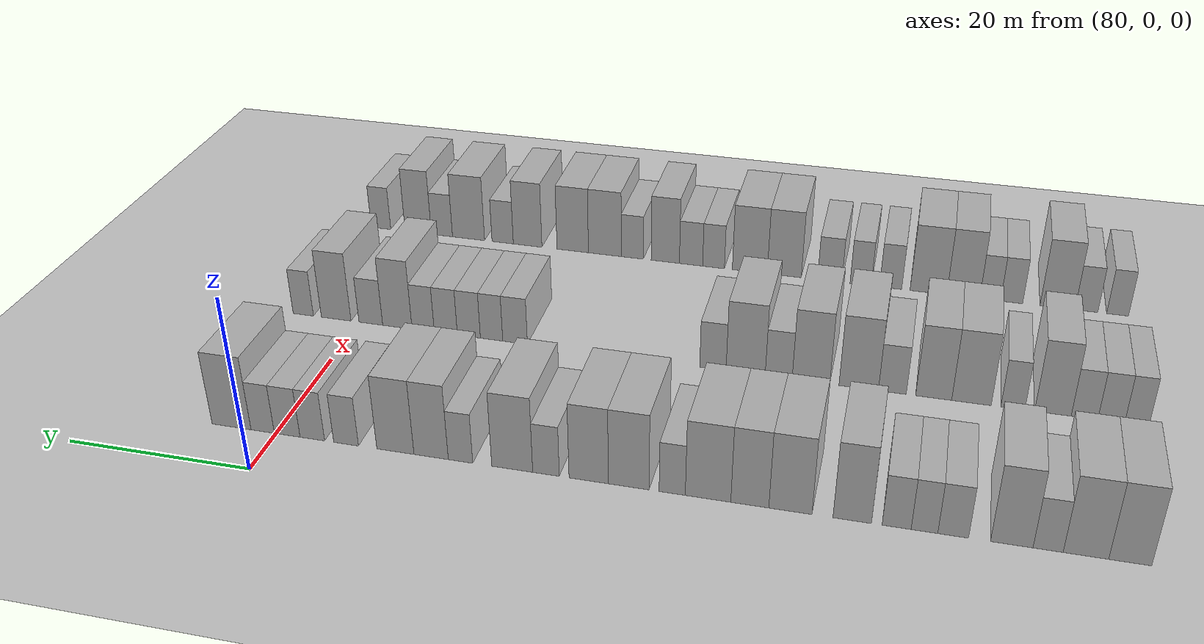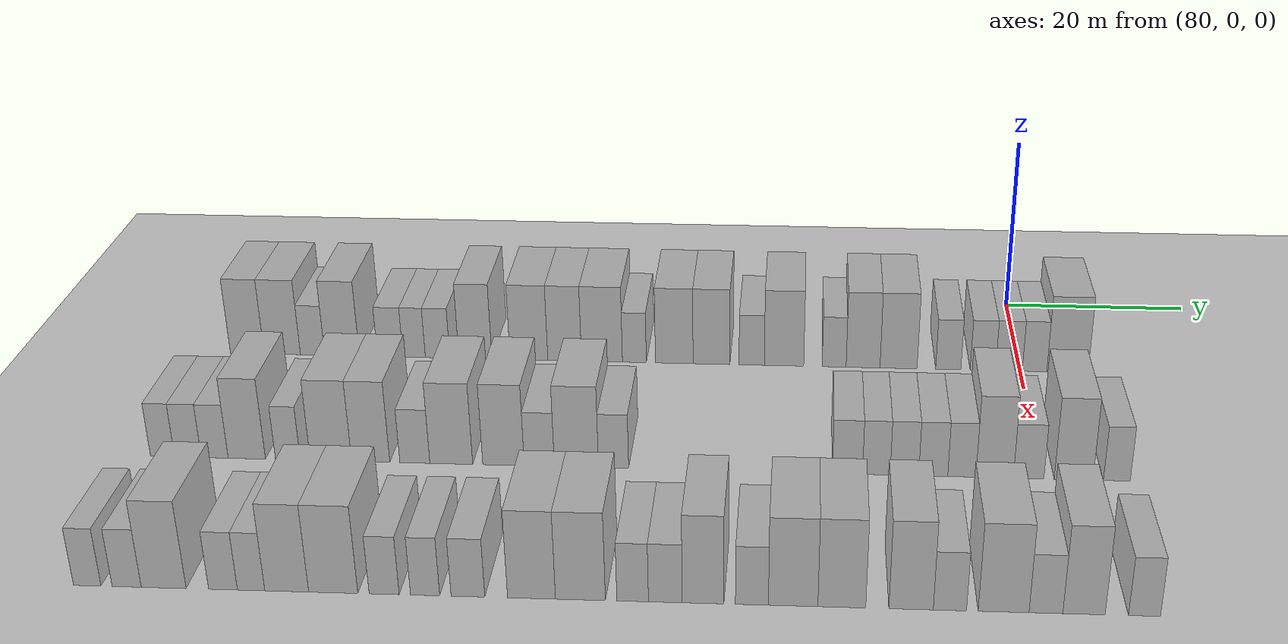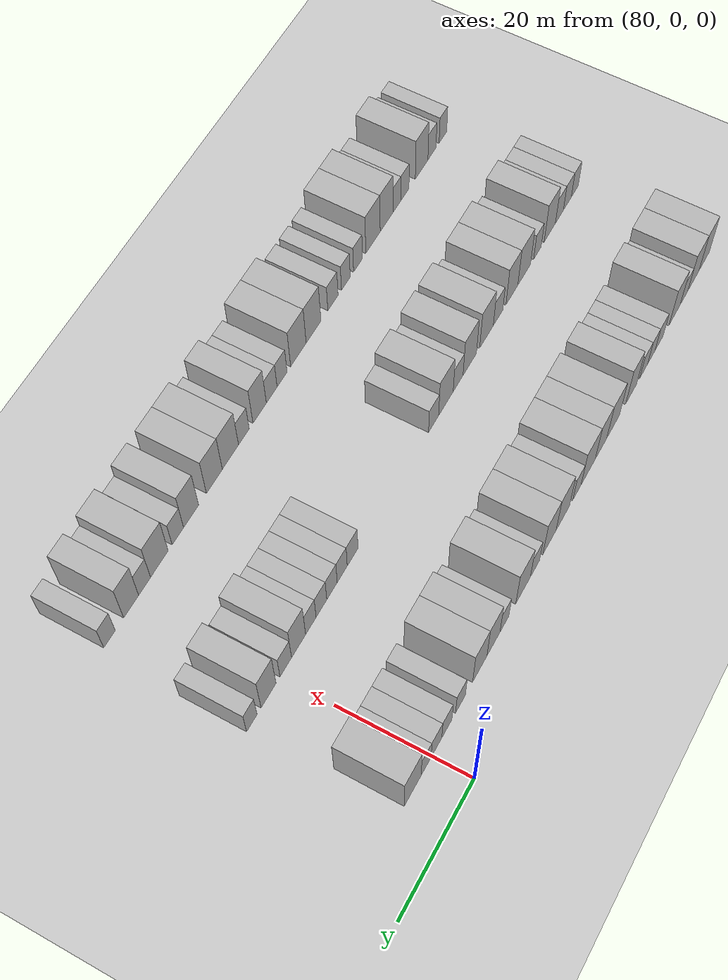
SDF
<sdf version="1.6">
 <world name="default">
  <include>
   <name>ground_plane_2</name>
   <uri>model://HANNAS_ground_plane</uri>
   <pose>100 0 0  0 0 0</pose>
  </include>
  <model name="building_640">
   <static>1</static>
   <pose>91.0000 -84.4906 0 0.000000 0.000000 0.000000</pose>
   <link name="link">
    <pose>0 0 4.50 0 0 0</pose>
    <collision name="collision"><geometry><box><size>10.0000 3.7576 9.0000</size></box></geometry></collision>
    <visual name="visual">
     <cast_shadows>0</cast_shadows>
     <geometry><box><size>10.0000 3.7576 9.0000</size></box></geometry>
     <material>
      <script>
       <uri>model://HANNAS_wall/materials/scripts</uri>
       <uri>model://HANNAS_wall/materials/textures</uri>
       <name>vrc/HANNAS_wall</name>
      </script>
     </material>
    </visual>
   </link>
  </model>
  <model name="building_641">
   <static>1</static>
   <pose>91.0000 -80.5954 0 0.000000 0.000000 0.000000</pose>
   <link name="link">
    <pose>0 0 4.50 0 0 0</pose>
    <collision name="collision"><geometry><box><size>10.0000 4.0330 9.0000</size></box></geometry></collision>
    <visual name="visual">
     <cast_shadows>0</cast_shadows>
     <geometry><box><size>10.0000 4.0330 9.0000</size></box></geometry>
     <material>
      <script>
       <uri>model://HANNAS_wall/materials/scripts</uri>
       <uri>model://HANNAS_wall/materials/textures</uri>
       <name>vrc/HANNAS_wall</name>
      </script>
     </material>
    </visual>
   </link>
  </model>
  <model name="building_642">
   <static>1</static>
   <pose>91.0000 -77.2322 0 0.000000 0.000000 0.000000</pose>
   <link name="link">
    <pose>0 0 3.00 0 0 0</pose>
    <collision name="collision"><geometry><box><size>10.0000 2.6934 6.0000</size></box></geometry></collision>
    <visual name="visual">
     <cast_shadows>0</cast_shadows>
     <geometry><box><size>10.0000 2.6934 6.0000</size></box></geometry>
     <material>
      <script>
       <uri>model://HANNAS_wall/materials/scripts</uri>
       <uri>model://HANNAS_wall/materials/textures</uri>
       <name>vrc/HANNAS_wall</name>
      </script>
     </material>
    </visual>
   </link>
  </model>
  <model name="building_643">
   <static>1</static>
   <pose>91.0000 -73.9660 0 0.000000 0.000000 0.000000</pose>
   <link name="link">
    <pose>0 0 4.50 0 0 0</pose>
    <collision name="collision"><geometry><box><size>10.0000 3.8389 9.0000</size></box></geometry></collision>
    <visual name="visual">
     <cast_shadows>0</cast_shadows>
     <geometry><box><size>10.0000 3.8389 9.0000</size></box></geometry>
     <material>
      <script>
       <uri>model://HANNAS_wall/materials/scripts</uri>
       <uri>model://HANNAS_wall/materials/textures</uri>
       <name>vrc/HANNAS_wall</name>
      </script>
     </material>
    </visual>
   </link>
  </model>
  <model name="building_644">
   <static>1</static>
   <pose>91.0000 -68.6338 0 0.000000 0.000000 0.000000</pose>
   <link name="link">
    <pose>0 0 3.00 0 0 0</pose>
    <collision name="collision"><geometry><box><size>10.0000 2.8254 6.0000</size></box></geometry></collision>
    <visual name="visual">
     <cast_shadows>0</cast_shadows>
     <geometry><box><size>10.0000 2.8254 6.0000</size></box></geometry>
     <material>
      <script>
       <uri>model://HANNAS_wall/materials/scripts</uri>
       <uri>model://HANNAS_wall/materials/textures</uri>
       <name>vrc/HANNAS_wall</name>
      </script>
     </material>
    </visual>
   </link>
  </model>
  <model name="building_645">
   <static>1</static>
   <pose>91.0000 -65.9870 0 0.000000 0.000000 0.000000</pose>
   <link name="link">
    <pose>0 0 3.00 0 0 0</pose>
    <collision name="collision"><geometry><box><size>10.0000 2.4682 6.0000</size></box></geometry></collision>
    <visual name="visual">
     <cast_shadows>0</cast_shadows>
     <geometry><box><size>10.0000 2.4682 6.0000</size></box></geometry>
     <material>
      <script>
       <uri>model://HANNAS_wall/materials/scripts</uri>
       <uri>model://HANNAS_wall/materials/textures</uri>
       <name>vrc/HANNAS_wall</name>
      </script>
     </material>
    </visual>
   </link>
  </model>
  <model name="building_646">
   <static>1</static>
   <pose>91.0000 -63.4015 0 0.000000 0.000000 0.000000</pose>
   <link name="link">
    <pose>0 0 3.00 0 0 0</pose>
    <collision name="collision"><geometry><box><size>10.0000 2.7029 6.0000</size></box></geometry></collision>
    <visual name="visual">
     <cast_shadows>0</cast_shadows>
     <geometry><box><size>10.0000 2.7029 6.0000</size></box></geometry>
     <material>
      <script>
       <uri>model://HANNAS_wall/materials/scripts</uri>
       <uri>model://HANNAS_wall/materials/textures</uri>
       <name>vrc/HANNAS_wall</name>
      </script>
     </material>
    </visual>
   </link>
  </model>
  <model name="building_647">
   <static>1</static>
   <pose>91.0000 -59.2321 0 0.000000 0.000000 0.000000</pose>
   <link name="link">
    <pose>0 0 4.50 0 0 0</pose>
    <collision name="collision"><geometry><box><size>10.0000 3.6359 9.0000</size></box></geometry></collision>
    <visual name="visual">
     <cast_shadows>0</cast_shadows>
     <geometry><box><size>10.0000 3.6359 9.0000</size></box></geometry>
     <material>
      <script>
       <uri>model://HANNAS_wall/materials/scripts</uri>
       <uri>model://HANNAS_wall/materials/textures</uri>
       <name>vrc/HANNAS_wall</name>
      </script>
     </material>
    </visual>
   </link>
  </model>
  <model name="building_648">
   <static>1</static>
   <pose>91.0000 -53.3398 0 0.000000 0.000000 0.000000</pose>
   <link name="link">
    <pose>0 0 4.50 0 0 0</pose>
    <collision name="collision"><geometry><box><size>10.0000 4.1485 9.0000</size></box></geometry></collision>
    <visual name="visual">
     <cast_shadows>0</cast_shadows>
     <geometry><box><size>10.0000 4.1485 9.0000</size></box></geometry>
     <material>
      <script>
       <uri>model://HANNAS_wall/materials/scripts</uri>
       <uri>model://HANNAS_wall/materials/textures</uri>
       <name>vrc/HANNAS_wall</name>
      </script>
     </material>
    </visual>
   </link>
  </model>
  <model name="building_649">
   <static>1</static>
   <pose>91.0000 -49.4177 0 0.000000 0.000000 0.000000</pose>
   <link name="link">
    <pose>0 0 4.50 0 0 0</pose>
    <collision name="collision"><geometry><box><size>10.0000 3.6957 9.0000</size></box></geometry></collision>
    <visual name="visual">
     <cast_shadows>0</cast_shadows>
     <geometry><box><size>10.0000 3.6957 9.0000</size></box></geometry>
     <material>
      <script>
       <uri>model://HANNAS_wall/materials/scripts</uri>
       <uri>model://HANNAS_wall/materials/textures</uri>
       <name>vrc/HANNAS_wall</name>
      </script>
     </material>
    </visual>
   </link>
  </model>
  <model name="building_650">
   <static>1</static>
   <pose>91.0000 -45.3319 0 0.000000 0.000000 0.000000</pose>
   <link name="link">
    <pose>0 0 4.50 0 0 0</pose>
    <collision name="collision"><geometry><box><size>10.0000 4.4759 9.0000</size></box></geometry></collision>
    <visual name="visual">
     <cast_shadows>0</cast_shadows>
     <geometry><box><size>10.0000 4.4759 9.0000</size></box></geometry>
     <material>
      <script>
       <uri>model://HANNAS_wall/materials/scripts</uri>
       <uri>model://HANNAS_wall/materials/textures</uri>
       <name>vrc/HANNAS_wall</name>
      </script>
     </material>
    </visual>
   </link>
  </model>
  <model name="building_651">
   <static>1</static>
   <pose>91.0000 -41.7918 0 0.000000 0.000000 0.000000</pose>
   <link name="link">
    <pose>0 0 3.00 0 0 0</pose>
    <collision name="collision"><geometry><box><size>10.0000 2.6044 6.0000</size></box></geometry></collision>
    <visual name="visual">
     <cast_shadows>0</cast_shadows>
     <geometry><box><size>10.0000 2.6044 6.0000</size></box></geometry>
     <material>
      <script>
       <uri>model://HANNAS_wall/materials/scripts</uri>
       <uri>model://HANNAS_wall/materials/textures</uri>
       <name>vrc/HANNAS_wall</name>
      </script>
     </material>
    </visual>
   </link>
  </model>
  <model name="building_652">
   <static>1</static>
   <pose>91.0000 -37.4369 0 0.000000 0.000000 0.000000</pose>
   <link name="link">
    <pose>0 0 4.50 0 0 0</pose>
    <collision name="collision"><geometry><box><size>10.0000 4.1052 9.0000</size></box></geometry></collision>
    <visual name="visual">
     <cast_shadows>0</cast_shadows>
     <geometry><box><size>10.0000 4.1052 9.0000</size></box></geometry>
     <material>
      <script>
       <uri>model://HANNAS_wall/materials/scripts</uri>
       <uri>model://HANNAS_wall/materials/textures</uri>
       <name>vrc/HANNAS_wall</name>
      </script>
     </material>
    </visual>
   </link>
  </model>
  <model name="building_653">
   <static>1</static>
   <pose>91.0000 -33.3820 0 0.000000 0.000000 0.000000</pose>
   <link name="link">
    <pose>0 0 4.50 0 0 0</pose>
    <collision name="collision"><geometry><box><size>10.0000 4.0046 9.0000</size></box></geometry></collision>
    <visual name="visual">
     <cast_shadows>0</cast_shadows>
     <geometry><box><size>10.0000 4.0046 9.0000</size></box></geometry>
     <material>
      <script>
       <uri>model://HANNAS_wall/materials/scripts</uri>
       <uri>model://HANNAS_wall/materials/textures</uri>
       <name>vrc/HANNAS_wall</name>
      </script>
     </material>
    </visual>
   </link>
  </model>
  <model name="building_654">
   <static>1</static>
   <pose>91.0000 -29.0054 0 0.000000 0.000000 0.000000</pose>
   <link name="link">
    <pose>0 0 3.00 0 0 0</pose>
    <collision name="collision"><geometry><box><size>10.0000 2.7486 6.0000</size></box></geometry></collision>
    <visual name="visual">
     <cast_shadows>0</cast_shadows>
     <geometry><box><size>10.0000 2.7486 6.0000</size></box></geometry>
     <material>
      <script>
       <uri>model://HANNAS_wall/materials/scripts</uri>
       <uri>model://HANNAS_wall/materials/textures</uri>
       <name>vrc/HANNAS_wall</name>
      </script>
     </material>
    </visual>
   </link>
  </model>
  <model name="building_655">
   <static>1</static>
   <pose>91.0000 -25.4975 0 0.000000 0.000000 0.000000</pose>
   <link name="link">
    <pose>0 0 4.50 0 0 0</pose>
    <collision name="collision"><geometry><box><size>10.0000 4.2670 9.0000</size></box></geometry></collision>
    <visual name="visual">
     <cast_shadows>0</cast_shadows>
     <geometry><box><size>10.0000 4.2670 9.0000</size></box></geometry>
     <material>
      <script>
       <uri>model://HANNAS_wall/materials/scripts</uri>
       <uri>model://HANNAS_wall/materials/textures</uri>
       <name>vrc/HANNAS_wall</name>
      </script>
     </material>
    </visual>
   </link>
  </model>
  <model name="building_656">
   <static>1</static>
   <pose>91.0000 -20.0700 0 0.000000 0.000000 0.000000</pose>
   <link name="link">
    <pose>0 0 3.00 0 0 0</pose>
    <collision name="collision"><geometry><box><size>10.0000 2.5881 6.0000</size></box></geometry></collision>
    <visual name="visual">
     <cast_shadows>0</cast_shadows>
     <geometry><box><size>10.0000 2.5881 6.0000</size></box></geometry>
     <material>
      <script>
       <uri>model://HANNAS_wall/materials/scripts</uri>
       <uri>model://HANNAS_wall/materials/textures</uri>
       <name>vrc/HANNAS_wall</name>
      </script>
     </material>
    </visual>
   </link>
  </model>
  <model name="building_657">
   <static>1</static>
   <pose>91.0000 -16.9427 0 0.000000 0.000000 0.000000</pose>
   <link name="link">
    <pose>0 0 4.50 0 0 0</pose>
    <collision name="collision"><geometry><box><size>10.0000 3.6664 9.0000</size></box></geometry></collision>
    <visual name="visual">
     <cast_shadows>0</cast_shadows>
     <geometry><box><size>10.0000 3.6664 9.0000</size></box></geometry>
     <material>
      <script>
       <uri>model://HANNAS_wall/materials/scripts</uri>
       <uri>model://HANNAS_wall/materials/textures</uri>
       <name>vrc/HANNAS_wall</name>
      </script>
     </material>
    </visual>
   </link>
  </model>
  <model name="building_658">
   <static>1</static>
   <pose>91.0000 -13.1056 0 0.000000 0.000000 0.000000</pose>
   <link name="link">
    <pose>0 0 4.50 0 0 0</pose>
    <collision name="collision"><geometry><box><size>10.0000 4.0078 9.0000</size></box></geometry></collision>
    <visual name="visual">
     <cast_shadows>0</cast_shadows>
     <geometry><box><size>10.0000 4.0078 9.0000</size></box></geometry>
     <material>
      <script>
       <uri>model://HANNAS_wall/materials/scripts</uri>
       <uri>model://HANNAS_wall/materials/textures</uri>
       <name>vrc/HANNAS_wall</name>
      </script>
     </material>
    </visual>
   </link>
  </model>
  <model name="building_659">
   <static>1</static>
   <pose>91.0000 -7.7446 0 0.000000 0.000000 0.000000</pose>
   <link name="link">
    <pose>0 0 3.00 0 0 0</pose>
    <collision name="collision"><geometry><box><size>10.0000 2.7142 6.0000</size></box></geometry></collision>
    <visual name="visual">
     <cast_shadows>0</cast_shadows>
     <geometry><box><size>10.0000 2.7142 6.0000</size></box></geometry>
     <material>
      <script>
       <uri>model://HANNAS_wall/materials/scripts</uri>
       <uri>model://HANNAS_wall/materials/textures</uri>
       <name>vrc/HANNAS_wall</name>
      </script>
     </material>
    </visual>
   </link>
  </model>
  <model name="building_660">
   <static>1</static>
   <pose>91.0000 -4.0229 0 0.000000 0.000000 0.000000</pose>
   <link name="link">
    <pose>0 0 3.00 0 0 0</pose>
    <collision name="collision"><geometry><box><size>10.0000 2.7292 6.0000</size></box></geometry></collision>
    <visual name="visual">
     <cast_shadows>0</cast_shadows>
     <geometry><box><size>10.0000 2.7292 6.0000</size></box></geometry>
     <material>
      <script>
       <uri>model://HANNAS_wall/materials/scripts</uri>
       <uri>model://HANNAS_wall/materials/textures</uri>
       <name>vrc/HANNAS_wall</name>
      </script>
     </material>
    </visual>
   </link>
  </model>
  <model name="building_661">
   <static>1</static>
   <pose>91.0000 -1.2262 0 0.000000 0.000000 0.000000</pose>
   <link name="link">
    <pose>0 0 3.00 0 0 0</pose>
    <collision name="collision"><geometry><box><size>10.0000 2.8642 6.0000</size></box></geometry></collision>
    <visual name="visual">
     <cast_shadows>0</cast_shadows>
     <geometry><box><size>10.0000 2.8642 6.0000</size></box></geometry>
     <material>
      <script>
       <uri>model://HANNAS_wall/materials/scripts</uri>
       <uri>model://HANNAS_wall/materials/textures</uri>
       <name>vrc/HANNAS_wall</name>
      </script>
     </material>
    </visual>
   </link>
  </model>
  <model name="building_662">
   <static>1</static>
   <pose>91.0000 1.5176 0 0.000000 0.000000 0.000000</pose>
   <link name="link">
    <pose>0 0 3.00 0 0 0</pose>
    <collision name="collision"><geometry><box><size>10.0000 2.6234 6.0000</size></box></geometry></collision>
    <visual name="visual">
     <cast_shadows>0</cast_shadows>
     <geometry><box><size>10.0000 2.6234 6.0000</size></box></geometry>
     <material>
      <script>
       <uri>model://HANNAS_wall/materials/scripts</uri>
       <uri>model://HANNAS_wall/materials/textures</uri>
       <name>vrc/HANNAS_wall</name>
      </script>
     </material>
    </visual>
   </link>
  </model>
  <model name="building_663">
   <static>1</static>
   <pose>91.0000 5.0386 0 0.000000 0.000000 0.000000</pose>
   <link name="link">
    <pose>0 0 4.50 0 0 0</pose>
    <collision name="collision"><geometry><box><size>10.0000 4.4187 9.0000</size></box></geometry></collision>
    <visual name="visual">
     <cast_shadows>0</cast_shadows>
     <geometry><box><size>10.0000 4.4187 9.0000</size></box></geometry>
     <material>
      <script>
       <uri>model://HANNAS_wall/materials/scripts</uri>
       <uri>model://HANNAS_wall/materials/textures</uri>
       <name>vrc/HANNAS_wall</name>
      </script>
     </material>
    </visual>
   </link>
  </model>
  <model name="building_824">
   <static>1</static>
   <pose>113.0000 -86.7164 0 0.000000 0.000000 0.000000</pose>
   <link name="link">
    <pose>0 0 3.00 0 0 0</pose>
    <collision name="collision"><geometry><box><size>10.0000 2.4150 6.0000</size></box></geometry></collision>
    <visual name="visual">
     <cast_shadows>0</cast_shadows>
     <geometry><box><size>10.0000 2.4150 6.0000</size></box></geometry>
     <material>
      <script>
       <uri>model://HANNAS_wall/materials/scripts</uri>
       <uri>model://HANNAS_wall/materials/textures</uri>
       <name>vrc/HANNAS_wall</name>
      </script>
     </material>
    </visual>
   </link>
  </model>
  <model name="building_825">
   <static>1</static>
   <pose>113.0000 -84.1625 0 0.000000 0.000000 0.000000</pose>
   <link name="link">
    <pose>0 0 3.00 0 0 0</pose>
    <collision name="collision"><geometry><box><size>10.0000 2.6926 6.0000</size></box></geometry></collision>
    <visual name="visual">
     <cast_shadows>0</cast_shadows>
     <geometry><box><size>10.0000 2.6926 6.0000</size></box></geometry>
     <material>
      <script>
       <uri>model://HANNAS_wall/materials/scripts</uri>
       <uri>model://HANNAS_wall/materials/textures</uri>
       <name>vrc/HANNAS_wall</name>
      </script>
     </material>
    </visual>
   </link>
  </model>
  <model name="building_826">
   <static>1</static>
   <pose>113.0000 -81.4694 0 0.000000 0.000000 0.000000</pose>
   <link name="link">
    <pose>0 0 3.00 0 0 0</pose>
    <collision name="collision"><geometry><box><size>10.0000 2.6936 6.0000</size></box></geometry></collision>
    <visual name="visual">
     <cast_shadows>0</cast_shadows>
     <geometry><box><size>10.0000 2.6936 6.0000</size></box></geometry>
     <material>
      <script>
       <uri>model://HANNAS_wall/materials/scripts</uri>
       <uri>model://HANNAS_wall/materials/textures</uri>
       <name>vrc/HANNAS_wall</name>
      </script>
     </material>
    </visual>
   </link>
  </model>
  <model name="building_827">
   <static>1</static>
   <pose>113.0000 -78.2540 0 0.000000 0.000000 0.000000</pose>
   <link name="link">
    <pose>0 0 4.50 0 0 0</pose>
    <collision name="collision"><geometry><box><size>10.0000 3.7372 9.0000</size></box></geometry></collision>
    <visual name="visual">
     <cast_shadows>0</cast_shadows>
     <geometry><box><size>10.0000 3.7372 9.0000</size></box></geometry>
     <material>
      <script>
       <uri>model://HANNAS_wall/materials/scripts</uri>
       <uri>model://HANNAS_wall/materials/textures</uri>
       <name>vrc/HANNAS_wall</name>
      </script>
     </material>
    </visual>
   </link>
  </model>
  <model name="building_828">
   <static>1</static>
   <pose>113.0000 -74.1465 0 0.000000 0.000000 0.000000</pose>
   <link name="link">
    <pose>0 0 3.00 0 0 0</pose>
    <collision name="collision"><geometry><box><size>10.0000 2.4777 6.0000</size></box></geometry></collision>
    <visual name="visual">
     <cast_shadows>0</cast_shadows>
     <geometry><box><size>10.0000 2.4777 6.0000</size></box></geometry>
     <material>
      <script>
       <uri>model://HANNAS_wall/materials/scripts</uri>
       <uri>model://HANNAS_wall/materials/textures</uri>
       <name>vrc/HANNAS_wall</name>
      </script>
     </material>
    </visual>
   </link>
  </model>
  <model name="building_829">
   <static>1</static>
   <pose>113.0000 -69.8435 0 0.000000 0.000000 0.000000</pose>
   <link name="link">
    <pose>0 0 4.50 0 0 0</pose>
    <collision name="collision"><geometry><box><size>10.0000 4.1282 9.0000</size></box></geometry></collision>
    <visual name="visual">
     <cast_shadows>0</cast_shadows>
     <geometry><box><size>10.0000 4.1282 9.0000</size></box></geometry>
     <material>
      <script>
       <uri>model://HANNAS_wall/materials/scripts</uri>
       <uri>model://HANNAS_wall/materials/textures</uri>
       <name>vrc/HANNAS_wall</name>
      </script>
     </material>
    </visual>
   </link>
  </model>
  <model name="building_830">
   <static>1</static>
   <pose>113.0000 -65.8798 0 0.000000 0.000000 0.000000</pose>
   <link name="link">
    <pose>0 0 4.50 0 0 0</pose>
    <collision name="collision"><geometry><box><size>10.0000 3.7993 9.0000</size></box></geometry></collision>
    <visual name="visual">
     <cast_shadows>0</cast_shadows>
     <geometry><box><size>10.0000 3.7993 9.0000</size></box></geometry>
     <material>
      <script>
       <uri>model://HANNAS_wall/materials/scripts</uri>
       <uri>model://HANNAS_wall/materials/textures</uri>
       <name>vrc/HANNAS_wall</name>
      </script>
     </material>
    </visual>
   </link>
  </model>
  <model name="building_831">
   <static>1</static>
   <pose>113.0000 -61.4907 0 0.000000 0.000000 0.000000</pose>
   <link name="link">
    <pose>0 0 3.00 0 0 0</pose>
    <collision name="collision"><geometry><box><size>10.0000 2.9790 6.0000</size></box></geometry></collision>
    <visual name="visual">
     <cast_shadows>0</cast_shadows>
     <geometry><box><size>10.0000 2.9790 6.0000</size></box></geometry>
     <material>
      <script>
       <uri>model://HANNAS_wall/materials/scripts</uri>
       <uri>model://HANNAS_wall/materials/textures</uri>
       <name>vrc/HANNAS_wall</name>
      </script>
     </material>
    </visual>
   </link>
  </model>
  <model name="building_832">
   <static>1</static>
   <pose>113.0000 -57.8759 0 0.000000 0.000000 0.000000</pose>
   <link name="link">
    <pose>0 0 4.50 0 0 0</pose>
    <collision name="collision"><geometry><box><size>10.0000 4.2506 9.0000</size></box></geometry></collision>
    <visual name="visual">
     <cast_shadows>0</cast_shadows>
     <geometry><box><size>10.0000 4.2506 9.0000</size></box></geometry>
     <material>
      <script>
       <uri>model://HANNAS_wall/materials/scripts</uri>
       <uri>model://HANNAS_wall/materials/textures</uri>
       <name>vrc/HANNAS_wall</name>
      </script>
     </material>
    </visual>
   </link>
  </model>
  <model name="building_833">
   <static>1</static>
   <pose>113.0000 -52.6978 0 0.000000 0.000000 0.000000</pose>
   <link name="link">
    <pose>0 0 4.50 0 0 0</pose>
    <collision name="collision"><geometry><box><size>10.0000 4.1057 9.0000</size></box></geometry></collision>
    <visual name="visual">
     <cast_shadows>0</cast_shadows>
     <geometry><box><size>10.0000 4.1057 9.0000</size></box></geometry>
     <material>
      <script>
       <uri>model://HANNAS_wall/materials/scripts</uri>
       <uri>model://HANNAS_wall/materials/textures</uri>
       <name>vrc/HANNAS_wall</name>
      </script>
     </material>
    </visual>
   </link>
  </model>
  <model name="building_834">
   <static>1</static>
   <pose>113.0000 -49.1568 0 0.000000 0.000000 0.000000</pose>
   <link name="link">
    <pose>0 0 3.00 0 0 0</pose>
    <collision name="collision"><geometry><box><size>10.0000 2.9762 6.0000</size></box></geometry></collision>
    <visual name="visual">
     <cast_shadows>0</cast_shadows>
     <geometry><box><size>10.0000 2.9762 6.0000</size></box></geometry>
     <material>
      <script>
       <uri>model://HANNAS_wall/materials/scripts</uri>
       <uri>model://HANNAS_wall/materials/textures</uri>
       <name>vrc/HANNAS_wall</name>
      </script>
     </material>
    </visual>
   </link>
  </model>
  <model name="building_835">
   <static>1</static>
   <pose>113.0000 -45.4919 0 0.000000 0.000000 0.000000</pose>
   <link name="link">
    <pose>0 0 4.50 0 0 0</pose>
    <collision name="collision"><geometry><box><size>10.0000 4.3537 9.0000</size></box></geometry></collision>
    <visual name="visual">
     <cast_shadows>0</cast_shadows>
     <geometry><box><size>10.0000 4.3537 9.0000</size></box></geometry>
     <material>
      <script>
       <uri>model://HANNAS_wall/materials/scripts</uri>
       <uri>model://HANNAS_wall/materials/textures</uri>
       <name>vrc/HANNAS_wall</name>
      </script>
     </material>
    </visual>
   </link>
  </model>
  <model name="building_836">
   <static>1</static>
   <pose>113.0000 -41.8344 0 0.000000 0.000000 0.000000</pose>
   <link name="link">
    <pose>0 0 3.00 0 0 0</pose>
    <collision name="collision"><geometry><box><size>10.0000 2.9611 6.0000</size></box></geometry></collision>
    <visual name="visual">
     <cast_shadows>0</cast_shadows>
     <geometry><box><size>10.0000 2.9611 6.0000</size></box></geometry>
     <material>
      <script>
       <uri>model://HANNAS_wall/materials/scripts</uri>
       <uri>model://HANNAS_wall/materials/textures</uri>
       <name>vrc/HANNAS_wall</name>
      </script>
     </material>
    </visual>
   </link>
  </model>
  <model name="building_837">
   <static>1</static>
   <pose>113.0000 -18.9463 0 0.000000 0.000000 0.000000</pose>
   <link name="link">
    <pose>0 0 3.00 0 0 0</pose>
    <collision name="collision"><geometry><box><size>10.0000 2.9384 6.0000</size></box></geometry></collision>
    <visual name="visual">
     <cast_shadows>0</cast_shadows>
     <geometry><box><size>10.0000 2.9384 6.0000</size></box></geometry>
     <material>
      <script>
       <uri>model://HANNAS_wall/materials/scripts</uri>
       <uri>model://HANNAS_wall/materials/textures</uri>
       <name>vrc/HANNAS_wall</name>
      </script>
     </material>
    </visual>
   </link>
  </model>
  <model name="building_838">
   <static>1</static>
   <pose>113.0000 -16.1351 0 0.000000 0.000000 0.000000</pose>
   <link name="link">
    <pose>0 0 3.00 0 0 0</pose>
    <collision name="collision"><geometry><box><size>10.0000 2.6839 6.0000</size></box></geometry></collision>
    <visual name="visual">
     <cast_shadows>0</cast_shadows>
     <geometry><box><size>10.0000 2.6839 6.0000</size></box></geometry>
     <material>
      <script>
       <uri>model://HANNAS_wall/materials/scripts</uri>
       <uri>model://HANNAS_wall/materials/textures</uri>
       <name>vrc/HANNAS_wall</name>
      </script>
     </material>
    </visual>
   </link>
  </model>
  <model name="building_839">
   <static>1</static>
   <pose>113.0000 -13.4050 0 0.000000 0.000000 0.000000</pose>
   <link name="link">
    <pose>0 0 3.00 0 0 0</pose>
    <collision name="collision"><geometry><box><size>10.0000 2.7763 6.0000</size></box></geometry></collision>
    <visual name="visual">
     <cast_shadows>0</cast_shadows>
     <geometry><box><size>10.0000 2.7763 6.0000</size></box></geometry>
     <material>
      <script>
       <uri>model://HANNAS_wall/materials/scripts</uri>
       <uri>model://HANNAS_wall/materials/textures</uri>
       <name>vrc/HANNAS_wall</name>
      </script>
     </material>
    </visual>
   </link>
  </model>
  <model name="building_840">
   <static>1</static>
   <pose>113.0000 -10.6125 0 0.000000 0.000000 0.000000</pose>
   <link name="link">
    <pose>0 0 3.00 0 0 0</pose>
    <collision name="collision"><geometry><box><size>10.0000 2.8088 6.0000</size></box></geometry></collision>
    <visual name="visual">
     <cast_shadows>0</cast_shadows>
     <geometry><box><size>10.0000 2.8088 6.0000</size></box></geometry>
     <material>
      <script>
       <uri>model://HANNAS_wall/materials/scripts</uri>
       <uri>model://HANNAS_wall/materials/textures</uri>
       <name>vrc/HANNAS_wall</name>
      </script>
     </material>
    </visual>
   </link>
  </model>
  <model name="building_841">
   <static>1</static>
   <pose>113.0000 -7.8457 0 0.000000 0.000000 0.000000</pose>
   <link name="link">
    <pose>0 0 3.00 0 0 0</pose>
    <collision name="collision"><geometry><box><size>10.0000 2.7247 6.0000</size></box></geometry></collision>
    <visual name="visual">
     <cast_shadows>0</cast_shadows>
     <geometry><box><size>10.0000 2.7247 6.0000</size></box></geometry>
     <material>
      <script>
       <uri>model://HANNAS_wall/materials/scripts</uri>
       <uri>model://HANNAS_wall/materials/textures</uri>
       <name>vrc/HANNAS_wall</name>
      </script>
     </material>
    </visual>
   </link>
  </model>
  <model name="building_842">
   <static>1</static>
   <pose>113.0000 -4.6710 0 0.000000 0.000000 0.000000</pose>
   <link name="link">
    <pose>0 0 4.50 0 0 0</pose>
    <collision name="collision"><geometry><box><size>10.0000 3.6247 9.0000</size></box></geometry></collision>
    <visual name="visual">
     <cast_shadows>0</cast_shadows>
     <geometry><box><size>10.0000 3.6247 9.0000</size></box></geometry>
     <material>
      <script>
       <uri>model://HANNAS_wall/materials/scripts</uri>
       <uri>model://HANNAS_wall/materials/textures</uri>
       <name>vrc/HANNAS_wall</name>
      </script>
     </material>
    </visual>
   </link>
  </model>
  <model name="building_843">
   <static>1</static>
   <pose>113.0000 -1.3863 0 0.000000 0.000000 0.000000</pose>
   <link name="link">
    <pose>0 0 3.00 0 0 0</pose>
    <collision name="collision"><geometry><box><size>10.0000 2.9448 6.0000</size></box></geometry></collision>
    <visual name="visual">
     <cast_shadows>0</cast_shadows>
     <geometry><box><size>10.0000 2.9448 6.0000</size></box></geometry>
     <material>
      <script>
       <uri>model://HANNAS_wall/materials/scripts</uri>
       <uri>model://HANNAS_wall/materials/textures</uri>
       <name>vrc/HANNAS_wall</name>
      </script>
     </material>
    </visual>
   </link>
  </model>
  <model name="building_844">
   <static>1</static>
   <pose>113.0000 2.9527 0 0.000000 0.000000 0.000000</pose>
   <link name="link">
    <pose>0 0 4.50 0 0 0</pose>
    <collision name="collision"><geometry><box><size>10.0000 3.7331 9.0000</size></box></geometry></collision>
    <visual name="visual">
     <cast_shadows>0</cast_shadows>
     <geometry><box><size>10.0000 3.7331 9.0000</size></box></geometry>
     <material>
      <script>
       <uri>model://HANNAS_wall/materials/scripts</uri>
       <uri>model://HANNAS_wall/materials/textures</uri>
       <name>vrc/HANNAS_wall</name>
      </script>
     </material>
    </visual>
   </link>
  </model>
  <model name="building_845">
   <static>1</static>
   <pose>113.0000 7.1077 0 0.000000 0.000000 0.000000</pose>
   <link name="link">
    <pose>0 0 3.00 0 0 0</pose>
    <collision name="collision"><geometry><box><size>10.0000 2.5768 6.0000</size></box></geometry></collision>
    <visual name="visual">
     <cast_shadows>0</cast_shadows>
     <geometry><box><size>10.0000 2.5768 6.0000</size></box></geometry>
     <material>
      <script>
       <uri>model://HANNAS_wall/materials/scripts</uri>
       <uri>model://HANNAS_wall/materials/textures</uri>
       <name>vrc/HANNAS_wall</name>
      </script>
     </material>
    </visual>
   </link>
  </model>
  <model name="building_1020">
   <static>1</static>
   <pose>135.0000 -86.2260 0 0.000000 0.000000 0.000000</pose>
   <link name="link">
    <pose>0 0 3.00 0 0 0</pose>
    <collision name="collision"><geometry><box><size>10.0000 2.4697 6.0000</size></box></geometry></collision>
    <visual name="visual">
     <cast_shadows>0</cast_shadows>
     <geometry><box><size>10.0000 2.4697 6.0000</size></box></geometry>
     <material>
      <script>
       <uri>model://HANNAS_wall/materials/scripts</uri>
       <uri>model://HANNAS_wall/materials/textures</uri>
       <name>vrc/HANNAS_wall</name>
      </script>
     </material>
    </visual>
   </link>
  </model>
  <model name="building_1021">
   <static>1</static>
   <pose>135.0000 -82.6882 0 0.000000 0.000000 0.000000</pose>
   <link name="link">
    <pose>0 0 3.00 0 0 0</pose>
    <collision name="collision"><geometry><box><size>10.0000 2.6059 6.0000</size></box></geometry></collision>
    <visual name="visual">
     <cast_shadows>0</cast_shadows>
     <geometry><box><size>10.0000 2.6059 6.0000</size></box></geometry>
     <material>
      <script>
       <uri>model://HANNAS_wall/materials/scripts</uri>
       <uri>model://HANNAS_wall/materials/textures</uri>
       <name>vrc/HANNAS_wall</name>
      </script>
     </material>
    </visual>
   </link>
  </model>
  <model name="building_1022">
   <static>1</static>
   <pose>135.0000 -79.3785 0 0.000000 0.000000 0.000000</pose>
   <link name="link">
    <pose>0 0 4.50 0 0 0</pose>
    <collision name="collision"><geometry><box><size>10.0000 4.0135 9.0000</size></box></geometry></collision>
    <visual name="visual">
     <cast_shadows>0</cast_shadows>
     <geometry><box><size>10.0000 4.0135 9.0000</size></box></geometry>
     <material>
      <script>
       <uri>model://HANNAS_wall/materials/scripts</uri>
       <uri>model://HANNAS_wall/materials/textures</uri>
       <name>vrc/HANNAS_wall</name>
      </script>
     </material>
    </visual>
   </link>
  </model>
  <model name="building_1023">
   <static>1</static>
   <pose>135.0000 -74.0871 0 0.000000 0.000000 0.000000</pose>
   <link name="link">
    <pose>0 0 3.00 0 0 0</pose>
    <collision name="collision"><geometry><box><size>10.0000 2.5693 6.0000</size></box></geometry></collision>
    <visual name="visual">
     <cast_shadows>0</cast_shadows>
     <geometry><box><size>10.0000 2.5693 6.0000</size></box></geometry>
     <material>
      <script>
       <uri>model://HANNAS_wall/materials/scripts</uri>
       <uri>model://HANNAS_wall/materials/textures</uri>
       <name>vrc/HANNAS_wall</name>
      </script>
     </material>
    </visual>
   </link>
  </model>
  <model name="building_1024">
   <static>1</static>
   <pose>135.0000 -71.5844 0 0.000000 0.000000 0.000000</pose>
   <link name="link">
    <pose>0 0 3.00 0 0 0</pose>
    <collision name="collision"><geometry><box><size>10.0000 2.4361 6.0000</size></box></geometry></collision>
    <visual name="visual">
     <cast_shadows>0</cast_shadows>
     <geometry><box><size>10.0000 2.4361 6.0000</size></box></geometry>
     <material>
      <script>
       <uri>model://HANNAS_wall/materials/scripts</uri>
       <uri>model://HANNAS_wall/materials/textures</uri>
       <name>vrc/HANNAS_wall</name>
      </script>
     </material>
    </visual>
   </link>
  </model>
  <model name="building_1025">
   <static>1</static>
   <pose>135.0000 -68.4183 0 0.000000 0.000000 0.000000</pose>
   <link name="link">
    <pose>0 0 4.50 0 0 0</pose>
    <collision name="collision"><geometry><box><size>10.0000 3.8960 9.0000</size></box></geometry></collision>
    <visual name="visual">
     <cast_shadows>0</cast_shadows>
     <geometry><box><size>10.0000 3.8960 9.0000</size></box></geometry>
     <material>
      <script>
       <uri>model://HANNAS_wall/materials/scripts</uri>
       <uri>model://HANNAS_wall/materials/textures</uri>
       <name>vrc/HANNAS_wall</name>
      </script>
     </material>
    </visual>
   </link>
  </model>
  <model name="building_1026">
   <static>1</static>
   <pose>135.0000 -64.2898 0 0.000000 0.000000 0.000000</pose>
   <link name="link">
    <pose>0 0 4.50 0 0 0</pose>
    <collision name="collision"><geometry><box><size>10.0000 4.3609 9.0000</size></box></geometry></collision>
    <visual name="visual">
     <cast_shadows>0</cast_shadows>
     <geometry><box><size>10.0000 4.3609 9.0000</size></box></geometry>
     <material>
      <script>
       <uri>model://HANNAS_wall/materials/scripts</uri>
       <uri>model://HANNAS_wall/materials/textures</uri>
       <name>vrc/HANNAS_wall</name>
      </script>
     </material>
    </visual>
   </link>
  </model>
  <model name="building_1027">
   <static>1</static>
   <pose>135.0000 -59.7790 0 0.000000 0.000000 0.000000</pose>
   <link name="link">
    <pose>0 0 3.00 0 0 0</pose>
    <collision name="collision"><geometry><box><size>10.0000 2.6607 6.0000</size></box></geometry></collision>
    <visual name="visual">
     <cast_shadows>0</cast_shadows>
     <geometry><box><size>10.0000 2.6607 6.0000</size></box></geometry>
     <material>
      <script>
       <uri>model://HANNAS_wall/materials/scripts</uri>
       <uri>model://HANNAS_wall/materials/textures</uri>
       <name>vrc/HANNAS_wall</name>
      </script>
     </material>
    </visual>
   </link>
  </model>
  <model name="building_1028">
   <static>1</static>
   <pose>135.0000 -56.1620 0 0.000000 0.000000 0.000000</pose>
   <link name="link">
    <pose>0 0 3.00 0 0 0</pose>
    <collision name="collision"><geometry><box><size>10.0000 2.5735 6.0000</size></box></geometry></collision>
    <visual name="visual">
     <cast_shadows>0</cast_shadows>
     <geometry><box><size>10.0000 2.5735 6.0000</size></box></geometry>
     <material>
      <script>
       <uri>model://HANNAS_wall/materials/scripts</uri>
       <uri>model://HANNAS_wall/materials/textures</uri>
       <name>vrc/HANNAS_wall</name>
      </script>
     </material>
    </visual>
   </link>
  </model>
  <model name="building_1029">
   <static>1</static>
   <pose>135.0000 -52.3880 0 0.000000 0.000000 0.000000</pose>
   <link name="link">
    <pose>0 0 3.00 0 0 0</pose>
    <collision name="collision"><geometry><box><size>10.0000 2.9744 6.0000</size></box></geometry></collision>
    <visual name="visual">
     <cast_shadows>0</cast_shadows>
     <geometry><box><size>10.0000 2.9744 6.0000</size></box></geometry>
     <material>
      <script>
       <uri>model://HANNAS_wall/materials/scripts</uri>
       <uri>model://HANNAS_wall/materials/textures</uri>
       <name>vrc/HANNAS_wall</name>
      </script>
     </material>
    </visual>
   </link>
  </model>
  <model name="building_1030">
   <static>1</static>
   <pose>135.0000 -46.7942 0 0.000000 0.000000 0.000000</pose>
   <link name="link">
    <pose>0 0 4.50 0 0 0</pose>
    <collision name="collision"><geometry><box><size>10.0000 4.2133 9.0000</size></box></geometry></collision>
    <visual name="visual">
     <cast_shadows>0</cast_shadows>
     <geometry><box><size>10.0000 4.2133 9.0000</size></box></geometry>
     <material>
      <script>
       <uri>model://HANNAS_wall/materials/scripts</uri>
       <uri>model://HANNAS_wall/materials/textures</uri>
       <name>vrc/HANNAS_wall</name>
      </script>
     </material>
    </visual>
   </link>
  </model>
  <model name="building_1031">
   <static>1</static>
   <pose>135.0000 -42.5014 0 0.000000 0.000000 0.000000</pose>
   <link name="link">
    <pose>0 0 4.50 0 0 0</pose>
    <collision name="collision"><geometry><box><size>10.0000 4.3723 9.0000</size></box></geometry></collision>
    <visual name="visual">
     <cast_shadows>0</cast_shadows>
     <geometry><box><size>10.0000 4.3723 9.0000</size></box></geometry>
     <material>
      <script>
       <uri>model://HANNAS_wall/materials/scripts</uri>
       <uri>model://HANNAS_wall/materials/textures</uri>
       <name>vrc/HANNAS_wall</name>
      </script>
     </material>
    </visual>
   </link>
  </model>
  <model name="building_1032">
   <static>1</static>
   <pose>135.0000 -37.9359 0 0.000000 0.000000 0.000000</pose>
   <link name="link">
    <pose>0 0 3.00 0 0 0</pose>
    <collision name="collision"><geometry><box><size>10.0000 2.7588 6.0000</size></box></geometry></collision>
    <visual name="visual">
     <cast_shadows>0</cast_shadows>
     <geometry><box><size>10.0000 2.7588 6.0000</size></box></geometry>
     <material>
      <script>
       <uri>model://HANNAS_wall/materials/scripts</uri>
       <uri>model://HANNAS_wall/materials/textures</uri>
       <name>vrc/HANNAS_wall</name>
      </script>
     </material>
    </visual>
   </link>
  </model>
  <model name="building_1033">
   <static>1</static>
   <pose>135.0000 -35.0810 0 0.000000 0.000000 0.000000</pose>
   <link name="link">
    <pose>0 0 3.00 0 0 0</pose>
    <collision name="collision"><geometry><box><size>10.0000 2.9511 6.0000</size></box></geometry></collision>
    <visual name="visual">
     <cast_shadows>0</cast_shadows>
     <geometry><box><size>10.0000 2.9511 6.0000</size></box></geometry>
     <material>
      <script>
       <uri>model://HANNAS_wall/materials/scripts</uri>
       <uri>model://HANNAS_wall/materials/textures</uri>
       <name>vrc/HANNAS_wall</name>
      </script>
     </material>
    </visual>
   </link>
  </model>
  <model name="building_1034">
   <static>1</static>
   <pose>135.0000 -31.7929 0 0.000000 0.000000 0.000000</pose>
   <link name="link">
    <pose>0 0 4.50 0 0 0</pose>
    <collision name="collision"><geometry><box><size>10.0000 3.6251 9.0000</size></box></geometry></collision>
    <visual name="visual">
     <cast_shadows>0</cast_shadows>
     <geometry><box><size>10.0000 3.6251 9.0000</size></box></geometry>
     <material>
      <script>
       <uri>model://HANNAS_wall/materials/scripts</uri>
       <uri>model://HANNAS_wall/materials/textures</uri>
       <name>vrc/HANNAS_wall</name>
      </script>
     </material>
    </visual>
   </link>
  </model>
  <model name="building_1035">
   <static>1</static>
   <pose>135.0000 -27.5454 0 0.000000 0.000000 0.000000</pose>
   <link name="link">
    <pose>0 0 3.00 0 0 0</pose>
    <collision name="collision"><geometry><box><size>10.0000 2.8699 6.0000</size></box></geometry></collision>
    <visual name="visual">
     <cast_shadows>0</cast_shadows>
     <geometry><box><size>10.0000 2.8699 6.0000</size></box></geometry>
     <material>
      <script>
       <uri>model://HANNAS_wall/materials/scripts</uri>
       <uri>model://HANNAS_wall/materials/textures</uri>
       <name>vrc/HANNAS_wall</name>
      </script>
     </material>
    </visual>
   </link>
  </model>
  <model name="building_1036">
   <static>1</static>
   <pose>135.0000 -23.9679 0 0.000000 0.000000 0.000000</pose>
   <link name="link">
    <pose>0 0 4.50 0 0 0</pose>
    <collision name="collision"><geometry><box><size>10.0000 4.2850 9.0000</size></box></geometry></collision>
    <visual name="visual">
     <cast_shadows>0</cast_shadows>
     <geometry><box><size>10.0000 4.2850 9.0000</size></box></geometry>
     <material>
      <script>
       <uri>model://HANNAS_wall/materials/scripts</uri>
       <uri>model://HANNAS_wall/materials/textures</uri>
       <name>vrc/HANNAS_wall</name>
      </script>
     </material>
    </visual>
   </link>
  </model>
  <model name="building_1037">
   <static>1</static>
   <pose>135.0000 -19.7539 0 0.000000 0.000000 0.000000</pose>
   <link name="link">
    <pose>0 0 4.50 0 0 0</pose>
    <collision name="collision"><geometry><box><size>10.0000 4.1431 9.0000</size></box></geometry></collision>
    <visual name="visual">
     <cast_shadows>0</cast_shadows>
     <geometry><box><size>10.0000 4.1431 9.0000</size></box></geometry>
     <material>
      <script>
       <uri>model://HANNAS_wall/materials/scripts</uri>
       <uri>model://HANNAS_wall/materials/textures</uri>
       <name>vrc/HANNAS_wall</name>
      </script>
     </material>
    </visual>
   </link>
  </model>
  <model name="building_1038">
   <static>1</static>
   <pose>135.0000 -13.7699 0 0.000000 0.000000 0.000000</pose>
   <link name="link">
    <pose>0 0 4.50 0 0 0</pose>
    <collision name="collision"><geometry><box><size>10.0000 3.8248 9.0000</size></box></geometry></collision>
    <visual name="visual">
     <cast_shadows>0</cast_shadows>
     <geometry><box><size>10.0000 3.8248 9.0000</size></box></geometry>
     <material>
      <script>
       <uri>model://HANNAS_wall/materials/scripts</uri>
       <uri>model://HANNAS_wall/materials/textures</uri>
       <name>vrc/HANNAS_wall</name>
      </script>
     </material>
    </visual>
   </link>
  </model>
  <model name="building_1039">
   <static>1</static>
   <pose>135.0000 -10.4249 0 0.000000 0.000000 0.000000</pose>
   <link name="link">
    <pose>0 0 3.00 0 0 0</pose>
    <collision name="collision"><geometry><box><size>10.0000 2.8652 6.0000</size></box></geometry></collision>
    <visual name="visual">
     <cast_shadows>0</cast_shadows>
     <geometry><box><size>10.0000 2.8652 6.0000</size></box></geometry>
     <material>
      <script>
       <uri>model://HANNAS_wall/materials/scripts</uri>
       <uri>model://HANNAS_wall/materials/textures</uri>
       <name>vrc/HANNAS_wall</name>
      </script>
     </material>
    </visual>
   </link>
  </model>
  <model name="building_1040">
   <static>1</static>
   <pose>135.0000 -5.8086 0 0.000000 0.000000 0.000000</pose>
   <link name="link">
    <pose>0 0 4.50 0 0 0</pose>
    <collision name="collision"><geometry><box><size>10.0000 4.3674 9.0000</size></box></geometry></collision>
    <visual name="visual">
     <cast_shadows>0</cast_shadows>
     <geometry><box><size>10.0000 4.3674 9.0000</size></box></geometry>
     <material>
      <script>
       <uri>model://HANNAS_wall/materials/scripts</uri>
       <uri>model://HANNAS_wall/materials/textures</uri>
       <name>vrc/HANNAS_wall</name>
      </script>
     </material>
    </visual>
   </link>
  </model>
  <model name="building_1041">
   <static>1</static>
   <pose>135.0000 -2.1782 0 0.000000 0.000000 0.000000</pose>
   <link name="link">
    <pose>0 0 3.00 0 0 0</pose>
    <collision name="collision"><geometry><box><size>10.0000 2.8936 6.0000</size></box></geometry></collision>
    <visual name="visual">
     <cast_shadows>0</cast_shadows>
     <geometry><box><size>10.0000 2.8936 6.0000</size></box></geometry>
     <material>
      <script>
       <uri>model://HANNAS_wall/materials/scripts</uri>
       <uri>model://HANNAS_wall/materials/textures</uri>
       <name>vrc/HANNAS_wall</name>
      </script>
     </material>
    </visual>
   </link>
  </model>
  <model name="building_1042">
   <static>1</static>
   <pose>135.0000 1.0782 0 0.000000 0.000000 0.000000</pose>
   <link name="link">
    <pose>0 0 4.50 0 0 0</pose>
    <collision name="collision"><geometry><box><size>10.0000 3.6191 9.0000</size></box></geometry></collision>
    <visual name="visual">
     <cast_shadows>0</cast_shadows>
     <geometry><box><size>10.0000 3.6191 9.0000</size></box></geometry>
     <material>
      <script>
       <uri>model://HANNAS_wall/materials/scripts</uri>
       <uri>model://HANNAS_wall/materials/textures</uri>
       <name>vrc/HANNAS_wall</name>
      </script>
     </material>
    </visual>
   </link>
  </model>
  <model name="building_1043">
   <static>1</static>
   <pose>135.0000 6.2478 0 0.000000 0.000000 0.000000</pose>
   <link name="link">
    <pose>0 0 3.00 0 0 0</pose>
    <collision name="collision"><geometry><box><size>10.0000 2.7202 6.0000</size></box></geometry></collision>
    <visual name="visual">
     <cast_shadows>0</cast_shadows>
     <geometry><box><size>10.0000 2.7202 6.0000</size></box></geometry>
     <material>
      <script>
       <uri>model://HANNAS_wall/materials/scripts</uri>
       <uri>model://HANNAS_wall/materials/textures</uri>
       <name>vrc/HANNAS_wall</name>
      </script>
     </material>
    </visual>
   </link>
  </model>
 </world>
</sdf>
